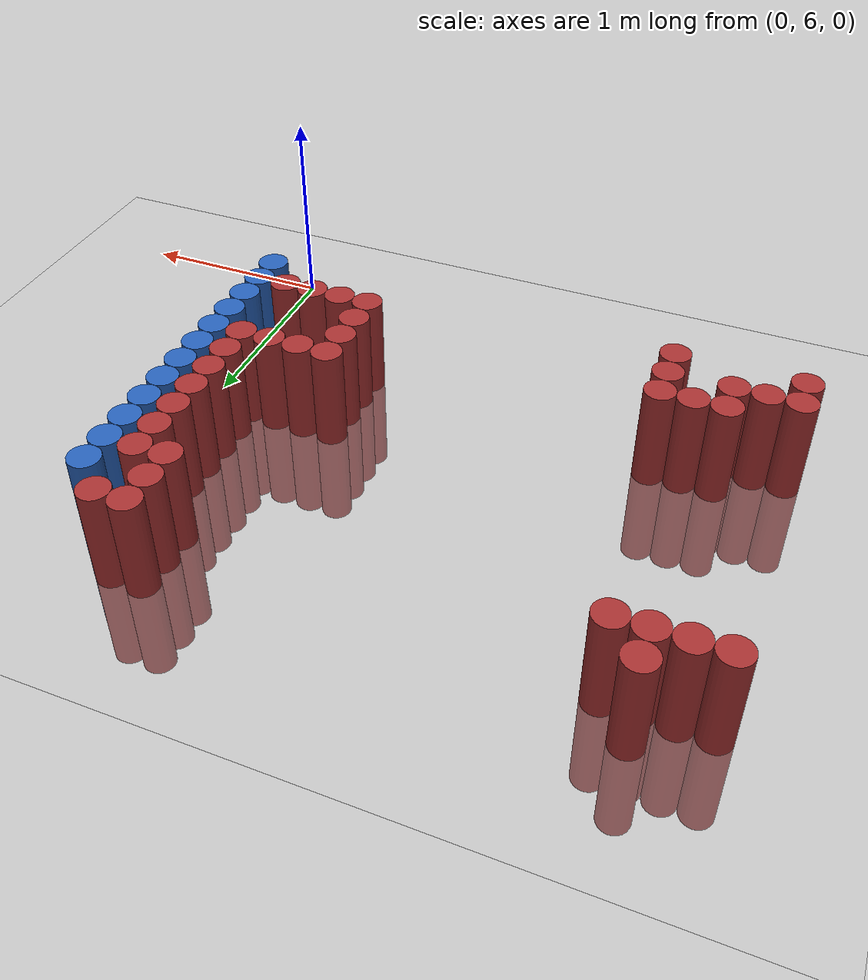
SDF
<sdf version="1.6">
 <world name="default">
  <model name="ground_plane">
   <static>1</static>
   <link name="link">
    <collision name="collision">
     <geometry><plane><normal>0 0 1</normal><size>100 100</size></plane></geometry>
     <surface><friction><ode><mu>100</mu><mu2>50</mu2></ode></friction></surface>
    </collision>
    <visual name="visual">
     <cast_shadows>0</cast_shadows>
     <geometry><plane><normal>0 0 1</normal><size>100 100</size></plane></geometry>
     <material>
      <script><uri>file://media/materials/scripts/gazebo.material</uri><name>Gazebo/Grey</name></script>
     </material>
    </visual>
   </link>
  </model>
  <model name="unit_cylinder_169">
   <static>1</static>
   <pose>-2.775000 6.525000 0.000000 0.000000 0.000000 0.000000</pose>
   <link name="link">
    <inertial>
     <mass>1</mass>
     <inertia><ixx>0.145833</ixx><ixy>0</ixy><ixz>0</ixz><iyy>0.145833</iyy><iyz>0</iyz><izz>0.125</izz></inertia>
    </inertial>
    <collision name="collision">
     <geometry><cylinder><radius>0.075000</radius><length>1</length></cylinder></geometry>
    </collision>
    <visual name="visual">
     <geometry><cylinder><radius>0.075000</radius><length>1</length></cylinder></geometry>
     <material>
      <ambient>0.648000 0.192000 0.192000 1</ambient>
      <diffuse>0.648000 0.192000 0.192000 1</diffuse>
     </material>
     <material>
      <script><name>Gazebo/Grey</name><uri>file://media/materials/scripts/gazebo.material</uri></script>
     </material>
    </visual>
   </link>
  </model>
  <model name="unit_cylinder_170">
   <static>1</static>
   <pose>-2.775000 6.675000 0.000000 0.000000 0.000000 0.000000</pose>
   <link name="link">
    <inertial>
     <mass>1</mass>
     <inertia><ixx>0.145833</ixx><ixy>0</ixy><ixz>0</ixz><iyy>0.145833</iyy><iyz>0</iyz><izz>0.125</izz></inertia>
    </inertial>
    <collision name="collision">
     <geometry><cylinder><radius>0.075000</radius><length>1</length></cylinder></geometry>
    </collision>
    <visual name="visual">
     <geometry><cylinder><radius>0.075000</radius><length>1</length></cylinder></geometry>
     <material>
      <ambient>0.648000 0.192000 0.192000 1</ambient>
      <diffuse>0.648000 0.192000 0.192000 1</diffuse>
     </material>
     <material>
      <script><name>Gazebo/Grey</name><uri>file://media/materials/scripts/gazebo.material</uri></script>
     </material>
    </visual>
   </link>
  </model>
  <model name="unit_cylinder_171">
   <static>1</static>
   <pose>-2.775000 8.175000 0.000000 0.000000 0.000000 0.000000</pose>
   <link name="link">
    <inertial>
     <mass>1</mass>
     <inertia><ixx>0.145833</ixx><ixy>0</ixy><ixz>0</ixz><iyy>0.145833</iyy><iyz>0</iyz><izz>0.125</izz></inertia>
    </inertial>
    <collision name="collision">
     <geometry><cylinder><radius>0.075000</radius><length>1</length></cylinder></geometry>
    </collision>
    <visual name="visual">
     <geometry><cylinder><radius>0.075000</radius><length>1</length></cylinder></geometry>
     <material>
      <ambient>0.648000 0.192000 0.192000 1</ambient>
      <diffuse>0.648000 0.192000 0.192000 1</diffuse>
     </material>
     <material>
      <script><name>Gazebo/Grey</name><uri>file://media/materials/scripts/gazebo.material</uri></script>
     </material>
    </visual>
   </link>
  </model>
  <model name="unit_cylinder_178">
   <static>1</static>
   <pose>-2.625000 6.675000 0.000000 0.000000 0.000000 0.000000</pose>
   <link name="link">
    <inertial>
     <mass>1</mass>
     <inertia><ixx>0.145833</ixx><ixy>0</ixy><ixz>0</ixz><iyy>0.145833</iyy><iyz>0</iyz><izz>0.125</izz></inertia>
    </inertial>
    <collision name="collision">
     <geometry><cylinder><radius>0.075000</radius><length>1</length></cylinder></geometry>
    </collision>
    <visual name="visual">
     <geometry><cylinder><radius>0.075000</radius><length>1</length></cylinder></geometry>
     <material>
      <ambient>0.648000 0.192000 0.192000 1</ambient>
      <diffuse>0.648000 0.192000 0.192000 1</diffuse>
     </material>
     <material>
      <script><name>Gazebo/Grey</name><uri>file://media/materials/scripts/gazebo.material</uri></script>
     </material>
    </visual>
   </link>
  </model>
  <model name="unit_cylinder_179">
   <static>1</static>
   <pose>-2.625000 8.175000 0.000000 0.000000 0.000000 0.000000</pose>
   <link name="link">
    <inertial>
     <mass>1</mass>
     <inertia><ixx>0.145833</ixx><ixy>0</ixy><ixz>0</ixz><iyy>0.145833</iyy><iyz>0</iyz><izz>0.125</izz></inertia>
    </inertial>
    <collision name="collision">
     <geometry><cylinder><radius>0.075000</radius><length>1</length></cylinder></geometry>
    </collision>
    <visual name="visual">
     <geometry><cylinder><radius>0.075000</radius><length>1</length></cylinder></geometry>
     <material>
      <ambient>0.648000 0.192000 0.192000 1</ambient>
      <diffuse>0.648000 0.192000 0.192000 1</diffuse>
     </material>
     <material>
      <script><name>Gazebo/Grey</name><uri>file://media/materials/scripts/gazebo.material</uri></script>
     </material>
    </visual>
   </link>
  </model>
  <model name="unit_cylinder_185">
   <static>1</static>
   <pose>-2.475000 6.675000 0.000000 0.000000 0.000000 0.000000</pose>
   <link name="link">
    <inertial>
     <mass>1</mass>
     <inertia><ixx>0.145833</ixx><ixy>0</ixy><ixz>0</ixz><iyy>0.145833</iyy><iyz>0</iyz><izz>0.125</izz></inertia>
    </inertial>
    <collision name="collision">
     <geometry><cylinder><radius>0.075000</radius><length>1</length></cylinder></geometry>
    </collision>
    <visual name="visual">
     <geometry><cylinder><radius>0.075000</radius><length>1</length></cylinder></geometry>
     <material>
      <ambient>0.648000 0.192000 0.192000 1</ambient>
      <diffuse>0.648000 0.192000 0.192000 1</diffuse>
     </material>
     <material>
      <script><name>Gazebo/Grey</name><uri>file://media/materials/scripts/gazebo.material</uri></script>
     </material>
    </visual>
   </link>
  </model>
  <model name="unit_cylinder_186">
   <static>1</static>
   <pose>-2.475000 6.825000 0.000000 0.000000 0.000000 0.000000</pose>
   <link name="link">
    <inertial>
     <mass>1</mass>
     <inertia><ixx>0.145833</ixx><ixy>0</ixy><ixz>0</ixz><iyy>0.145833</iyy><iyz>0</iyz><izz>0.125</izz></inertia>
    </inertial>
    <collision name="collision">
     <geometry><cylinder><radius>0.075000</radius><length>1</length></cylinder></geometry>
    </collision>
    <visual name="visual">
     <geometry><cylinder><radius>0.075000</radius><length>1</length></cylinder></geometry>
     <material>
      <ambient>0.648000 0.192000 0.192000 1</ambient>
      <diffuse>0.648000 0.192000 0.192000 1</diffuse>
     </material>
     <material>
      <script><name>Gazebo/Grey</name><uri>file://media/materials/scripts/gazebo.material</uri></script>
     </material>
    </visual>
   </link>
  </model>
  <model name="unit_cylinder_187">
   <static>1</static>
   <pose>-2.475000 8.175000 0.000000 0.000000 0.000000 0.000000</pose>
   <link name="link">
    <inertial>
     <mass>1</mass>
     <inertia><ixx>0.145833</ixx><ixy>0</ixy><ixz>0</ixz><iyy>0.145833</iyy><iyz>0</iyz><izz>0.125</izz></inertia>
    </inertial>
    <collision name="collision">
     <geometry><cylinder><radius>0.075000</radius><length>1</length></cylinder></geometry>
    </collision>
    <visual name="visual">
     <geometry><cylinder><radius>0.075000</radius><length>1</length></cylinder></geometry>
     <material>
      <ambient>0.648000 0.192000 0.192000 1</ambient>
      <diffuse>0.648000 0.192000 0.192000 1</diffuse>
     </material>
     <material>
      <script><name>Gazebo/Grey</name><uri>file://media/materials/scripts/gazebo.material</uri></script>
     </material>
    </visual>
   </link>
  </model>
  <model name="unit_cylinder_188">
   <static>1</static>
   <pose>-2.475000 8.325000 0.000000 0.000000 0.000000 0.000000</pose>
   <link name="link">
    <inertial>
     <mass>1</mass>
     <inertia><ixx>0.145833</ixx><ixy>0</ixy><ixz>0</ixz><iyy>0.145833</iyy><iyz>0</iyz><izz>0.125</izz></inertia>
    </inertial>
    <collision name="collision">
     <geometry><cylinder><radius>0.075000</radius><length>1</length></cylinder></geometry>
    </collision>
    <visual name="visual">
     <geometry><cylinder><radius>0.075000</radius><length>1</length></cylinder></geometry>
     <material>
      <ambient>0.648000 0.192000 0.192000 1</ambient>
      <diffuse>0.648000 0.192000 0.192000 1</diffuse>
     </material>
     <material>
      <script><name>Gazebo/Grey</name><uri>file://media/materials/scripts/gazebo.material</uri></script>
     </material>
    </visual>
   </link>
  </model>
  <model name="unit_cylinder_194">
   <static>1</static>
   <pose>-2.325000 6.825000 0.000000 0.000000 0.000000 0.000000</pose>
   <link name="link">
    <inertial>
     <mass>1</mass>
     <inertia><ixx>0.145833</ixx><ixy>0</ixy><ixz>0</ixz><iyy>0.145833</iyy><iyz>0</iyz><izz>0.125</izz></inertia>
    </inertial>
    <collision name="collision">
     <geometry><cylinder><radius>0.075000</radius><length>1</length></cylinder></geometry>
    </collision>
    <visual name="visual">
     <geometry><cylinder><radius>0.075000</radius><length>1</length></cylinder></geometry>
     <material>
      <ambient>0.648000 0.192000 0.192000 1</ambient>
      <diffuse>0.648000 0.192000 0.192000 1</diffuse>
     </material>
     <material>
      <script><name>Gazebo/Grey</name><uri>file://media/materials/scripts/gazebo.material</uri></script>
     </material>
    </visual>
   </link>
  </model>
  <model name="unit_cylinder_195">
   <static>1</static>
   <pose>-2.325000 8.175000 0.000000 0.000000 0.000000 0.000000</pose>
   <link name="link">
    <inertial>
     <mass>1</mass>
     <inertia><ixx>0.145833</ixx><ixy>0</ixy><ixz>0</ixz><iyy>0.145833</iyy><iyz>0</iyz><izz>0.125</izz></inertia>
    </inertial>
    <collision name="collision">
     <geometry><cylinder><radius>0.075000</radius><length>1</length></cylinder></geometry>
    </collision>
    <visual name="visual">
     <geometry><cylinder><radius>0.075000</radius><length>1</length></cylinder></geometry>
     <material>
      <ambient>0.648000 0.192000 0.192000 1</ambient>
      <diffuse>0.648000 0.192000 0.192000 1</diffuse>
     </material>
     <material>
      <script><name>Gazebo/Grey</name><uri>file://media/materials/scripts/gazebo.material</uri></script>
     </material>
    </visual>
   </link>
  </model>
  <model name="unit_cylinder_199">
   <static>1</static>
   <pose>-2.175000 6.525000 0.000000 0.000000 0.000000 0.000000</pose>
   <link name="link">
    <inertial>
     <mass>1</mass>
     <inertia><ixx>0.145833</ixx><ixy>0</ixy><ixz>0</ixz><iyy>0.145833</iyy><iyz>0</iyz><izz>0.125</izz></inertia>
    </inertial>
    <collision name="collision">
     <geometry><cylinder><radius>0.075000</radius><length>1</length></cylinder></geometry>
    </collision>
    <visual name="visual">
     <geometry><cylinder><radius>0.075000</radius><length>1</length></cylinder></geometry>
     <material>
      <ambient>0.648000 0.192000 0.192000 1</ambient>
      <diffuse>0.648000 0.192000 0.192000 1</diffuse>
     </material>
     <material>
      <script><name>Gazebo/Grey</name><uri>file://media/materials/scripts/gazebo.material</uri></script>
     </material>
    </visual>
   </link>
  </model>
  <model name="unit_cylinder_200">
   <static>1</static>
   <pose>-2.175000 6.675000 0.000000 0.000000 0.000000 0.000000</pose>
   <link name="link">
    <inertial>
     <mass>1</mass>
     <inertia><ixx>0.145833</ixx><ixy>0</ixy><ixz>0</ixz><iyy>0.145833</iyy><iyz>0</iyz><izz>0.125</izz></inertia>
    </inertial>
    <collision name="collision">
     <geometry><cylinder><radius>0.075000</radius><length>1</length></cylinder></geometry>
    </collision>
    <visual name="visual">
     <geometry><cylinder><radius>0.075000</radius><length>1</length></cylinder></geometry>
     <material>
      <ambient>0.648000 0.192000 0.192000 1</ambient>
      <diffuse>0.648000 0.192000 0.192000 1</diffuse>
     </material>
     <material>
      <script><name>Gazebo/Grey</name><uri>file://media/materials/scripts/gazebo.material</uri></script>
     </material>
    </visual>
   </link>
  </model>
  <model name="unit_cylinder_201">
   <static>1</static>
   <pose>-2.175000 6.825000 0.000000 0.000000 0.000000 0.000000</pose>
   <link name="link">
    <inertial>
     <mass>1</mass>
     <inertia><ixx>0.145833</ixx><ixy>0</ixy><ixz>0</ixz><iyy>0.145833</iyy><iyz>0</iyz><izz>0.125</izz></inertia>
    </inertial>
    <collision name="collision">
     <geometry><cylinder><radius>0.075000</radius><length>1</length></cylinder></geometry>
    </collision>
    <visual name="visual">
     <geometry><cylinder><radius>0.075000</radius><length>1</length></cylinder></geometry>
     <material>
      <ambient>0.648000 0.192000 0.192000 1</ambient>
      <diffuse>0.648000 0.192000 0.192000 1</diffuse>
     </material>
     <material>
      <script><name>Gazebo/Grey</name><uri>file://media/materials/scripts/gazebo.material</uri></script>
     </material>
    </visual>
   </link>
  </model>
  <model name="unit_cylinder_221">
   <static>1</static>
   <pose>-0.675000 6.675000 0.000000 0.000000 0.000000 0.000000</pose>
   <link name="link">
    <inertial>
     <mass>1</mass>
     <inertia><ixx>0.145833</ixx><ixy>0</ixy><ixz>0</ixz><iyy>0.145833</iyy><iyz>0</iyz><izz>0.125</izz></inertia>
    </inertial>
    <collision name="collision">
     <geometry><cylinder><radius>0.075000</radius><length>1</length></cylinder></geometry>
    </collision>
    <visual name="visual">
     <geometry><cylinder><radius>0.075000</radius><length>1</length></cylinder></geometry>
     <material>
      <ambient>0.648000 0.192000 0.192000 1</ambient>
      <diffuse>0.648000 0.192000 0.192000 1</diffuse>
     </material>
     <material>
      <script><name>Gazebo/Grey</name><uri>file://media/materials/scripts/gazebo.material</uri></script>
     </material>
    </visual>
   </link>
  </model>
  <model name="unit_cylinder_222">
   <static>1</static>
   <pose>-0.675000 6.825000 0.000000 0.000000 0.000000 0.000000</pose>
   <link name="link">
    <inertial>
     <mass>1</mass>
     <inertia><ixx>0.145833</ixx><ixy>0</ixy><ixz>0</ixz><iyy>0.145833</iyy><iyz>0</iyz><izz>0.125</izz></inertia>
    </inertial>
    <collision name="collision">
     <geometry><cylinder><radius>0.075000</radius><length>1</length></cylinder></geometry>
    </collision>
    <visual name="visual">
     <geometry><cylinder><radius>0.075000</radius><length>1</length></cylinder></geometry>
     <material>
      <ambient>0.648000 0.192000 0.192000 1</ambient>
      <diffuse>0.648000 0.192000 0.192000 1</diffuse>
     </material>
     <material>
      <script><name>Gazebo/Grey</name><uri>file://media/materials/scripts/gazebo.material</uri></script>
     </material>
    </visual>
   </link>
  </model>
  <model name="unit_cylinder_223">
   <static>1</static>
   <pose>-0.675000 6.975000 0.000000 0.000000 0.000000 0.000000</pose>
   <link name="link">
    <inertial>
     <mass>1</mass>
     <inertia><ixx>0.145833</ixx><ixy>0</ixy><ixz>0</ixz><iyy>0.145833</iyy><iyz>0</iyz><izz>0.125</izz></inertia>
    </inertial>
    <collision name="collision">
     <geometry><cylinder><radius>0.075000</radius><length>1</length></cylinder></geometry>
    </collision>
    <visual name="visual">
     <geometry><cylinder><radius>0.075000</radius><length>1</length></cylinder></geometry>
     <material>
      <ambient>0.648000 0.192000 0.192000 1</ambient>
      <diffuse>0.648000 0.192000 0.192000 1</diffuse>
     </material>
     <material>
      <script><name>Gazebo/Grey</name><uri>file://media/materials/scripts/gazebo.material</uri></script>
     </material>
    </visual>
   </link>
  </model>
  <model name="unit_cylinder_224">
   <static>1</static>
   <pose>-0.675000 7.125000 0.000000 0.000000 0.000000 0.000000</pose>
   <link name="link">
    <inertial>
     <mass>1</mass>
     <inertia><ixx>0.145833</ixx><ixy>0</ixy><ixz>0</ixz><iyy>0.145833</iyy><iyz>0</iyz><izz>0.125</izz></inertia>
    </inertial>
    <collision name="collision">
     <geometry><cylinder><radius>0.075000</radius><length>1</length></cylinder></geometry>
    </collision>
    <visual name="visual">
     <geometry><cylinder><radius>0.075000</radius><length>1</length></cylinder></geometry>
     <material>
      <ambient>0.648000 0.192000 0.192000 1</ambient>
      <diffuse>0.648000 0.192000 0.192000 1</diffuse>
     </material>
     <material>
      <script><name>Gazebo/Grey</name><uri>file://media/materials/scripts/gazebo.material</uri></script>
     </material>
    </visual>
   </link>
  </model>
  <model name="unit_cylinder_227">
   <static>1</static>
   <pose>-0.525000 6.675000 0.000000 0.000000 0.000000 0.000000</pose>
   <link name="link">
    <inertial>
     <mass>1</mass>
     <inertia><ixx>0.145833</ixx><ixy>0</ixy><ixz>0</ixz><iyy>0.145833</iyy><iyz>0</iyz><izz>0.125</izz></inertia>
    </inertial>
    <collision name="collision">
     <geometry><cylinder><radius>0.075000</radius><length>1</length></cylinder></geometry>
    </collision>
    <visual name="visual">
     <geometry><cylinder><radius>0.075000</radius><length>1</length></cylinder></geometry>
     <material>
      <ambient>0.648000 0.192000 0.192000 1</ambient>
      <diffuse>0.648000 0.192000 0.192000 1</diffuse>
     </material>
     <material>
      <script><name>Gazebo/Grey</name><uri>file://media/materials/scripts/gazebo.material</uri></script>
     </material>
    </visual>
   </link>
  </model>
  <model name="unit_cylinder_228">
   <static>1</static>
   <pose>-0.525000 7.125000 0.000000 0.000000 0.000000 0.000000</pose>
   <link name="link">
    <inertial>
     <mass>1</mass>
     <inertia><ixx>0.145833</ixx><ixy>0</ixy><ixz>0</ixz><iyy>0.145833</iyy><iyz>0</iyz><izz>0.125</izz></inertia>
    </inertial>
    <collision name="collision">
     <geometry><cylinder><radius>0.075000</radius><length>1</length></cylinder></geometry>
    </collision>
    <visual name="visual">
     <geometry><cylinder><radius>0.075000</radius><length>1</length></cylinder></geometry>
     <material>
      <ambient>0.648000 0.192000 0.192000 1</ambient>
      <diffuse>0.648000 0.192000 0.192000 1</diffuse>
     </material>
     <material>
      <script><name>Gazebo/Grey</name><uri>file://media/materials/scripts/gazebo.material</uri></script>
     </material>
    </visual>
   </link>
  </model>
  <model name="unit_cylinder_231">
   <static>1</static>
   <pose>-0.375000 6.675000 0.000000 0.000000 0.000000 0.000000</pose>
   <link name="link">
    <inertial>
     <mass>1</mass>
     <inertia><ixx>0.145833</ixx><ixy>0</ixy><ixz>0</ixz><iyy>0.145833</iyy><iyz>0</iyz><izz>0.125</izz></inertia>
    </inertial>
    <collision name="collision">
     <geometry><cylinder><radius>0.075000</radius><length>1</length></cylinder></geometry>
    </collision>
    <visual name="visual">
     <geometry><cylinder><radius>0.075000</radius><length>1</length></cylinder></geometry>
     <material>
      <ambient>0.648000 0.192000 0.192000 1</ambient>
      <diffuse>0.648000 0.192000 0.192000 1</diffuse>
     </material>
     <material>
      <script><name>Gazebo/Grey</name><uri>file://media/materials/scripts/gazebo.material</uri></script>
     </material>
    </visual>
   </link>
  </model>
  <model name="unit_cylinder_232">
   <static>1</static>
   <pose>-0.375000 7.125000 0.000000 0.000000 0.000000 0.000000</pose>
   <link name="link">
    <inertial>
     <mass>1</mass>
     <inertia><ixx>0.145833</ixx><ixy>0</ixy><ixz>0</ixz><iyy>0.145833</iyy><iyz>0</iyz><izz>0.125</izz></inertia>
    </inertial>
    <collision name="collision">
     <geometry><cylinder><radius>0.075000</radius><length>1</length></cylinder></geometry>
    </collision>
    <visual name="visual">
     <geometry><cylinder><radius>0.075000</radius><length>1</length></cylinder></geometry>
     <material>
      <ambient>0.648000 0.192000 0.192000 1</ambient>
      <diffuse>0.648000 0.192000 0.192000 1</diffuse>
     </material>
     <material>
      <script><name>Gazebo/Grey</name><uri>file://media/materials/scripts/gazebo.material</uri></script>
     </material>
    </visual>
   </link>
  </model>
  <model name="unit_cylinder_233">
   <static>1</static>
   <pose>-0.375000 8.025000 0.000000 0.000000 0.000000 0.000000</pose>
   <link name="link">
    <inertial>
     <mass>1</mass>
     <inertia><ixx>0.145833</ixx><ixy>0</ixy><ixz>0</ixz><iyy>0.145833</iyy><iyz>0</iyz><izz>0.125</izz></inertia>
    </inertial>
    <collision name="collision">
     <geometry><cylinder><radius>0.075000</radius><length>1</length></cylinder></geometry>
    </collision>
    <visual name="visual">
     <geometry><cylinder><radius>0.075000</radius><length>1</length></cylinder></geometry>
     <material>
      <ambient>0.648000 0.192000 0.192000 1</ambient>
      <diffuse>0.648000 0.192000 0.192000 1</diffuse>
     </material>
     <material>
      <script><name>Gazebo/Grey</name><uri>file://media/materials/scripts/gazebo.material</uri></script>
     </material>
    </visual>
   </link>
  </model>
  <model name="unit_cylinder_234">
   <static>1</static>
   <pose>-0.375000 8.175000 0.000000 0.000000 0.000000 0.000000</pose>
   <link name="link">
    <inertial>
     <mass>1</mass>
     <inertia><ixx>0.145833</ixx><ixy>0</ixy><ixz>0</ixz><iyy>0.145833</iyy><iyz>0</iyz><izz>0.125</izz></inertia>
    </inertial>
    <collision name="collision">
     <geometry><cylinder><radius>0.075000</radius><length>1</length></cylinder></geometry>
    </collision>
    <visual name="visual">
     <geometry><cylinder><radius>0.075000</radius><length>1</length></cylinder></geometry>
     <material>
      <ambient>0.648000 0.192000 0.192000 1</ambient>
      <diffuse>0.648000 0.192000 0.192000 1</diffuse>
     </material>
     <material>
      <script><name>Gazebo/Grey</name><uri>file://media/materials/scripts/gazebo.material</uri></script>
     </material>
    </visual>
   </link>
  </model>
  <model name="unit_cylinder_235">
   <static>1</static>
   <pose>-0.375000 8.325000 0.000000 0.000000 0.000000 0.000000</pose>
   <link name="link">
    <inertial>
     <mass>1</mass>
     <inertia><ixx>0.145833</ixx><ixy>0</ixy><ixz>0</ixz><iyy>0.145833</iyy><iyz>0</iyz><izz>0.125</izz></inertia>
    </inertial>
    <collision name="collision">
     <geometry><cylinder><radius>0.075000</radius><length>1</length></cylinder></geometry>
    </collision>
    <visual name="visual">
     <geometry><cylinder><radius>0.075000</radius><length>1</length></cylinder></geometry>
     <material>
      <ambient>0.648000 0.192000 0.192000 1</ambient>
      <diffuse>0.648000 0.192000 0.192000 1</diffuse>
     </material>
     <material>
      <script><name>Gazebo/Grey</name><uri>file://media/materials/scripts/gazebo.material</uri></script>
     </material>
    </visual>
   </link>
  </model>
  <model name="unit_cylinder_239">
   <static>1</static>
   <pose>-0.225000 6.675000 0.000000 0.000000 0.000000 0.000000</pose>
   <link name="link">
    <inertial>
     <mass>1</mass>
     <inertia><ixx>0.145833</ixx><ixy>0</ixy><ixz>0</ixz><iyy>0.145833</iyy><iyz>0</iyz><izz>0.125</izz></inertia>
    </inertial>
    <collision name="collision">
     <geometry><cylinder><radius>0.075000</radius><length>1</length></cylinder></geometry>
    </collision>
    <visual name="visual">
     <geometry><cylinder><radius>0.075000</radius><length>1</length></cylinder></geometry>
     <material>
      <ambient>0.648000 0.192000 0.192000 1</ambient>
      <diffuse>0.648000 0.192000 0.192000 1</diffuse>
     </material>
     <material>
      <script><name>Gazebo/Grey</name><uri>file://media/materials/scripts/gazebo.material</uri></script>
     </material>
    </visual>
   </link>
  </model>
  <model name="unit_cylinder_240">
   <static>1</static>
   <pose>-0.225000 7.125000 0.000000 0.000000 0.000000 0.000000</pose>
   <link name="link">
    <inertial>
     <mass>1</mass>
     <inertia><ixx>0.145833</ixx><ixy>0</ixy><ixz>0</ixz><iyy>0.145833</iyy><iyz>0</iyz><izz>0.125</izz></inertia>
    </inertial>
    <collision name="collision">
     <geometry><cylinder><radius>0.075000</radius><length>1</length></cylinder></geometry>
    </collision>
    <visual name="visual">
     <geometry><cylinder><radius>0.075000</radius><length>1</length></cylinder></geometry>
     <material>
      <ambient>0.648000 0.192000 0.192000 1</ambient>
      <diffuse>0.648000 0.192000 0.192000 1</diffuse>
     </material>
     <material>
      <script><name>Gazebo/Grey</name><uri>file://media/materials/scripts/gazebo.material</uri></script>
     </material>
    </visual>
   </link>
  </model>
  <model name="unit_cylinder_241">
   <static>1</static>
   <pose>-0.225000 7.275000 0.000000 0.000000 0.000000 0.000000</pose>
   <link name="link">
    <inertial>
     <mass>1</mass>
     <inertia><ixx>0.145833</ixx><ixy>0</ixy><ixz>0</ixz><iyy>0.145833</iyy><iyz>0</iyz><izz>0.125</izz></inertia>
    </inertial>
    <collision name="collision">
     <geometry><cylinder><radius>0.075000</radius><length>1</length></cylinder></geometry>
    </collision>
    <visual name="visual">
     <geometry><cylinder><radius>0.075000</radius><length>1</length></cylinder></geometry>
     <material>
      <ambient>0.648000 0.192000 0.192000 1</ambient>
      <diffuse>0.648000 0.192000 0.192000 1</diffuse>
     </material>
     <material>
      <script><name>Gazebo/Grey</name><uri>file://media/materials/scripts/gazebo.material</uri></script>
     </material>
    </visual>
   </link>
  </model>
  <model name="unit_cylinder_242">
   <static>1</static>
   <pose>-0.225000 7.425000 0.000000 0.000000 0.000000 0.000000</pose>
   <link name="link">
    <inertial>
     <mass>1</mass>
     <inertia><ixx>0.145833</ixx><ixy>0</ixy><ixz>0</ixz><iyy>0.145833</iyy><iyz>0</iyz><izz>0.125</izz></inertia>
    </inertial>
    <collision name="collision">
     <geometry><cylinder><radius>0.075000</radius><length>1</length></cylinder></geometry>
    </collision>
    <visual name="visual">
     <geometry><cylinder><radius>0.075000</radius><length>1</length></cylinder></geometry>
     <material>
      <ambient>0.648000 0.192000 0.192000 1</ambient>
      <diffuse>0.648000 0.192000 0.192000 1</diffuse>
     </material>
     <material>
      <script><name>Gazebo/Grey</name><uri>file://media/materials/scripts/gazebo.material</uri></script>
     </material>
    </visual>
   </link>
  </model>
  <model name="unit_cylinder_243">
   <static>1</static>
   <pose>-0.225000 7.575000 0.000000 0.000000 0.000000 0.000000</pose>
   <link name="link">
    <inertial>
     <mass>1</mass>
     <inertia><ixx>0.145833</ixx><ixy>0</ixy><ixz>0</ixz><iyy>0.145833</iyy><iyz>0</iyz><izz>0.125</izz></inertia>
    </inertial>
    <collision name="collision">
     <geometry><cylinder><radius>0.075000</radius><length>1</length></cylinder></geometry>
    </collision>
    <visual name="visual">
     <geometry><cylinder><radius>0.075000</radius><length>1</length></cylinder></geometry>
     <material>
      <ambient>0.648000 0.192000 0.192000 1</ambient>
      <diffuse>0.648000 0.192000 0.192000 1</diffuse>
     </material>
     <material>
      <script><name>Gazebo/Grey</name><uri>file://media/materials/scripts/gazebo.material</uri></script>
     </material>
    </visual>
   </link>
  </model>
  <model name="unit_cylinder_244">
   <static>1</static>
   <pose>-0.225000 7.725000 0.000000 0.000000 0.000000 0.000000</pose>
   <link name="link">
    <inertial>
     <mass>1</mass>
     <inertia><ixx>0.145833</ixx><ixy>0</ixy><ixz>0</ixz><iyy>0.145833</iyy><iyz>0</iyz><izz>0.125</izz></inertia>
    </inertial>
    <collision name="collision">
     <geometry><cylinder><radius>0.075000</radius><length>1</length></cylinder></geometry>
    </collision>
    <visual name="visual">
     <geometry><cylinder><radius>0.075000</radius><length>1</length></cylinder></geometry>
     <material>
      <ambient>0.648000 0.192000 0.192000 1</ambient>
      <diffuse>0.648000 0.192000 0.192000 1</diffuse>
     </material>
     <material>
      <script><name>Gazebo/Grey</name><uri>file://media/materials/scripts/gazebo.material</uri></script>
     </material>
    </visual>
   </link>
  </model>
  <model name="unit_cylinder_245">
   <static>1</static>
   <pose>-0.225000 7.875000 0.000000 0.000000 0.000000 0.000000</pose>
   <link name="link">
    <inertial>
     <mass>1</mass>
     <inertia><ixx>0.145833</ixx><ixy>0</ixy><ixz>0</ixz><iyy>0.145833</iyy><iyz>0</iyz><izz>0.125</izz></inertia>
    </inertial>
    <collision name="collision">
     <geometry><cylinder><radius>0.075000</radius><length>1</length></cylinder></geometry>
    </collision>
    <visual name="visual">
     <geometry><cylinder><radius>0.075000</radius><length>1</length></cylinder></geometry>
     <material>
      <ambient>0.648000 0.192000 0.192000 1</ambient>
      <diffuse>0.648000 0.192000 0.192000 1</diffuse>
     </material>
     <material>
      <script><name>Gazebo/Grey</name><uri>file://media/materials/scripts/gazebo.material</uri></script>
     </material>
    </visual>
   </link>
  </model>
  <model name="unit_cylinder_246">
   <static>1</static>
   <pose>-0.225000 8.025000 0.000000 0.000000 0.000000 0.000000</pose>
   <link name="link">
    <inertial>
     <mass>1</mass>
     <inertia><ixx>0.145833</ixx><ixy>0</ixy><ixz>0</ixz><iyy>0.145833</iyy><iyz>0</iyz><izz>0.125</izz></inertia>
    </inertial>
    <collision name="collision">
     <geometry><cylinder><radius>0.075000</radius><length>1</length></cylinder></geometry>
    </collision>
    <visual name="visual">
     <geometry><cylinder><radius>0.075000</radius><length>1</length></cylinder></geometry>
     <material>
      <ambient>0.648000 0.192000 0.192000 1</ambient>
      <diffuse>0.648000 0.192000 0.192000 1</diffuse>
     </material>
     <material>
      <script><name>Gazebo/Grey</name><uri>file://media/materials/scripts/gazebo.material</uri></script>
     </material>
    </visual>
   </link>
  </model>
  <model name="unit_cylinder_247">
   <static>1</static>
   <pose>-0.225000 8.325000 0.000000 0.000000 0.000000 0.000000</pose>
   <link name="link">
    <inertial>
     <mass>1</mass>
     <inertia><ixx>0.145833</ixx><ixy>0</ixy><ixz>0</ixz><iyy>0.145833</iyy><iyz>0</iyz><izz>0.125</izz></inertia>
    </inertial>
    <collision name="collision">
     <geometry><cylinder><radius>0.075000</radius><length>1</length></cylinder></geometry>
    </collision>
    <visual name="visual">
     <geometry><cylinder><radius>0.075000</radius><length>1</length></cylinder></geometry>
     <material>
      <ambient>0.648000 0.192000 0.192000 1</ambient>
      <diffuse>0.648000 0.192000 0.192000 1</diffuse>
     </material>
     <material>
      <script><name>Gazebo/Grey</name><uri>file://media/materials/scripts/gazebo.material</uri></script>
     </material>
    </visual>
   </link>
  </model>
  <model name="unit_cylinder_260">
   <static>1</static>
   <pose>-0.075000 6.525000 0.000000 0.000000 0.000000 0.000000</pose>
   <link name="link">
    <inertial>
     <mass>1</mass>
     <inertia><ixx>0.145833</ixx><ixy>0</ixy><ixz>0</ixz><iyy>0.145833</iyy><iyz>0</iyz><izz>0.125</izz></inertia>
    </inertial>
    <collision name="collision">
     <geometry><cylinder><radius>0.075000</radius><length>1</length></cylinder></geometry>
    </collision>
    <visual name="visual">
     <geometry><cylinder><radius>0.075000</radius><length>1</length></cylinder></geometry>
     <material>
      <ambient>0.152000 0.379000 0.720000 1</ambient>
      <diffuse>0.152000 0.379000 0.720000 1</diffuse>
     </material>
     <material>
      <script><name>Gazebo/Grey</name><uri>file://media/materials/scripts/gazebo.material</uri></script>
     </material>
    </visual>
   </link>
  </model>
  <model name="unit_cylinder_261">
   <static>1</static>
   <pose>-0.075000 6.675000 0.000000 0.000000 0.000000 0.000000</pose>
   <link name="link">
    <inertial>
     <mass>1</mass>
     <inertia><ixx>0.145833</ixx><ixy>0</ixy><ixz>0</ixz><iyy>0.145833</iyy><iyz>0</iyz><izz>0.125</izz></inertia>
    </inertial>
    <collision name="collision">
     <geometry><cylinder><radius>0.075000</radius><length>1</length></cylinder></geometry>
    </collision>
    <visual name="visual">
     <geometry><cylinder><radius>0.075000</radius><length>1</length></cylinder></geometry>
     <material>
      <ambient>0.152000 0.379000 0.720000 1</ambient>
      <diffuse>0.152000 0.379000 0.720000 1</diffuse>
     </material>
     <material>
      <script><name>Gazebo/Grey</name><uri>file://media/materials/scripts/gazebo.material</uri></script>
     </material>
    </visual>
   </link>
  </model>
  <model name="unit_cylinder_262">
   <static>1</static>
   <pose>-0.075000 6.825000 0.000000 0.000000 0.000000 0.000000</pose>
   <link name="link">
    <inertial>
     <mass>1</mass>
     <inertia><ixx>0.145833</ixx><ixy>0</ixy><ixz>0</ixz><iyy>0.145833</iyy><iyz>0</iyz><izz>0.125</izz></inertia>
    </inertial>
    <collision name="collision">
     <geometry><cylinder><radius>0.075000</radius><length>1</length></cylinder></geometry>
    </collision>
    <visual name="visual">
     <geometry><cylinder><radius>0.075000</radius><length>1</length></cylinder></geometry>
     <material>
      <ambient>0.152000 0.379000 0.720000 1</ambient>
      <diffuse>0.152000 0.379000 0.720000 1</diffuse>
     </material>
     <material>
      <script><name>Gazebo/Grey</name><uri>file://media/materials/scripts/gazebo.material</uri></script>
     </material>
    </visual>
   </link>
  </model>
  <model name="unit_cylinder_263">
   <static>1</static>
   <pose>-0.075000 6.975000 0.000000 0.000000 0.000000 0.000000</pose>
   <link name="link">
    <inertial>
     <mass>1</mass>
     <inertia><ixx>0.145833</ixx><ixy>0</ixy><ixz>0</ixz><iyy>0.145833</iyy><iyz>0</iyz><izz>0.125</izz></inertia>
    </inertial>
    <collision name="collision">
     <geometry><cylinder><radius>0.075000</radius><length>1</length></cylinder></geometry>
    </collision>
    <visual name="visual">
     <geometry><cylinder><radius>0.075000</radius><length>1</length></cylinder></geometry>
     <material>
      <ambient>0.152000 0.379000 0.720000 1</ambient>
      <diffuse>0.152000 0.379000 0.720000 1</diffuse>
     </material>
     <material>
      <script><name>Gazebo/Grey</name><uri>file://media/materials/scripts/gazebo.material</uri></script>
     </material>
    </visual>
   </link>
  </model>
  <model name="unit_cylinder_264">
   <static>1</static>
   <pose>-0.075000 7.125000 0.000000 0.000000 0.000000 0.000000</pose>
   <link name="link">
    <inertial>
     <mass>1</mass>
     <inertia><ixx>0.145833</ixx><ixy>0</ixy><ixz>0</ixz><iyy>0.145833</iyy><iyz>0</iyz><izz>0.125</izz></inertia>
    </inertial>
    <collision name="collision">
     <geometry><cylinder><radius>0.075000</radius><length>1</length></cylinder></geometry>
    </collision>
    <visual name="visual">
     <geometry><cylinder><radius>0.075000</radius><length>1</length></cylinder></geometry>
     <material>
      <ambient>0.152000 0.379000 0.720000 1</ambient>
      <diffuse>0.152000 0.379000 0.720000 1</diffuse>
     </material>
     <material>
      <script><name>Gazebo/Grey</name><uri>file://media/materials/scripts/gazebo.material</uri></script>
     </material>
    </visual>
   </link>
  </model>
  <model name="unit_cylinder_265">
   <static>1</static>
   <pose>-0.075000 7.275000 0.000000 0.000000 0.000000 0.000000</pose>
   <link name="link">
    <inertial>
     <mass>1</mass>
     <inertia><ixx>0.145833</ixx><ixy>0</ixy><ixz>0</ixz><iyy>0.145833</iyy><iyz>0</iyz><izz>0.125</izz></inertia>
    </inertial>
    <collision name="collision">
     <geometry><cylinder><radius>0.075000</radius><length>1</length></cylinder></geometry>
    </collision>
    <visual name="visual">
     <geometry><cylinder><radius>0.075000</radius><length>1</length></cylinder></geometry>
     <material>
      <ambient>0.152000 0.379000 0.720000 1</ambient>
      <diffuse>0.152000 0.379000 0.720000 1</diffuse>
     </material>
     <material>
      <script><name>Gazebo/Grey</name><uri>file://media/materials/scripts/gazebo.material</uri></script>
     </material>
    </visual>
   </link>
  </model>
  <model name="unit_cylinder_266">
   <static>1</static>
   <pose>-0.075000 7.425000 0.000000 0.000000 0.000000 0.000000</pose>
   <link name="link">
    <inertial>
     <mass>1</mass>
     <inertia><ixx>0.145833</ixx><ixy>0</ixy><ixz>0</ixz><iyy>0.145833</iyy><iyz>0</iyz><izz>0.125</izz></inertia>
    </inertial>
    <collision name="collision">
     <geometry><cylinder><radius>0.075000</radius><length>1</length></cylinder></geometry>
    </collision>
    <visual name="visual">
     <geometry><cylinder><radius>0.075000</radius><length>1</length></cylinder></geometry>
     <material>
      <ambient>0.152000 0.379000 0.720000 1</ambient>
      <diffuse>0.152000 0.379000 0.720000 1</diffuse>
     </material>
     <material>
      <script><name>Gazebo/Grey</name><uri>file://media/materials/scripts/gazebo.material</uri></script>
     </material>
    </visual>
   </link>
  </model>
  <model name="unit_cylinder_267">
   <static>1</static>
   <pose>-0.075000 7.575000 0.000000 0.000000 0.000000 0.000000</pose>
   <link name="link">
    <inertial>
     <mass>1</mass>
     <inertia><ixx>0.145833</ixx><ixy>0</ixy><ixz>0</ixz><iyy>0.145833</iyy><iyz>0</iyz><izz>0.125</izz></inertia>
    </inertial>
    <collision name="collision">
     <geometry><cylinder><radius>0.075000</radius><length>1</length></cylinder></geometry>
    </collision>
    <visual name="visual">
     <geometry><cylinder><radius>0.075000</radius><length>1</length></cylinder></geometry>
     <material>
      <ambient>0.152000 0.379000 0.720000 1</ambient>
      <diffuse>0.152000 0.379000 0.720000 1</diffuse>
     </material>
     <material>
      <script><name>Gazebo/Grey</name><uri>file://media/materials/scripts/gazebo.material</uri></script>
     </material>
    </visual>
   </link>
  </model>
  <model name="unit_cylinder_268">
   <static>1</static>
   <pose>-0.075000 7.725000 0.000000 0.000000 0.000000 0.000000</pose>
   <link name="link">
    <inertial>
     <mass>1</mass>
     <inertia><ixx>0.145833</ixx><ixy>0</ixy><ixz>0</ixz><iyy>0.145833</iyy><iyz>0</iyz><izz>0.125</izz></inertia>
    </inertial>
    <collision name="collision">
     <geometry><cylinder><radius>0.075000</radius><length>1</length></cylinder></geometry>
    </collision>
    <visual name="visual">
     <geometry><cylinder><radius>0.075000</radius><length>1</length></cylinder></geometry>
     <material>
      <ambient>0.152000 0.379000 0.720000 1</ambient>
      <diffuse>0.152000 0.379000 0.720000 1</diffuse>
     </material>
     <material>
      <script><name>Gazebo/Grey</name><uri>file://media/materials/scripts/gazebo.material</uri></script>
     </material>
    </visual>
   </link>
  </model>
  <model name="unit_cylinder_269">
   <static>1</static>
   <pose>-0.075000 7.875000 0.000000 0.000000 0.000000 0.000000</pose>
   <link name="link">
    <inertial>
     <mass>1</mass>
     <inertia><ixx>0.145833</ixx><ixy>0</ixy><ixz>0</ixz><iyy>0.145833</iyy><iyz>0</iyz><izz>0.125</izz></inertia>
    </inertial>
    <collision name="collision">
     <geometry><cylinder><radius>0.075000</radius><length>1</length></cylinder></geometry>
    </collision>
    <visual name="visual">
     <geometry><cylinder><radius>0.075000</radius><length>1</length></cylinder></geometry>
     <material>
      <ambient>0.152000 0.379000 0.720000 1</ambient>
      <diffuse>0.152000 0.379000 0.720000 1</diffuse>
     </material>
     <material>
      <script><name>Gazebo/Grey</name><uri>file://media/materials/scripts/gazebo.material</uri></script>
     </material>
    </visual>
   </link>
  </model>
  <model name="unit_cylinder_270">
   <static>1</static>
   <pose>-0.075000 8.025000 0.000000 0.000000 0.000000 0.000000</pose>
   <link name="link">
    <inertial>
     <mass>1</mass>
     <inertia><ixx>0.145833</ixx><ixy>0</ixy><ixz>0</ixz><iyy>0.145833</iyy><iyz>0</iyz><izz>0.125</izz></inertia>
    </inertial>
    <collision name="collision">
     <geometry><cylinder><radius>0.075000</radius><length>1</length></cylinder></geometry>
    </collision>
    <visual name="visual">
     <geometry><cylinder><radius>0.075000</radius><length>1</length></cylinder></geometry>
     <material>
      <ambient>0.152000 0.379000 0.720000 1</ambient>
      <diffuse>0.152000 0.379000 0.720000 1</diffuse>
     </material>
     <material>
      <script><name>Gazebo/Grey</name><uri>file://media/materials/scripts/gazebo.material</uri></script>
     </material>
    </visual>
   </link>
  </model>
  <model name="unit_cylinder_271">
   <static>1</static>
   <pose>-0.075000 8.175000 0.000000 0.000000 0.000000 0.000000</pose>
   <link name="link">
    <inertial>
     <mass>1</mass>
     <inertia><ixx>0.145833</ixx><ixy>0</ixy><ixz>0</ixz><iyy>0.145833</iyy><iyz>0</iyz><izz>0.125</izz></inertia>
    </inertial>
    <collision name="collision">
     <geometry><cylinder><radius>0.075000</radius><length>1</length></cylinder></geometry>
    </collision>
    <visual name="visual">
     <geometry><cylinder><radius>0.075000</radius><length>1</length></cylinder></geometry>
     <material>
      <ambient>0.152000 0.379000 0.720000 1</ambient>
      <diffuse>0.152000 0.379000 0.720000 1</diffuse>
     </material>
     <material>
      <script><name>Gazebo/Grey</name><uri>file://media/materials/scripts/gazebo.material</uri></script>
     </material>
    </visual>
   </link>
  </model>
 </world>
</sdf>
